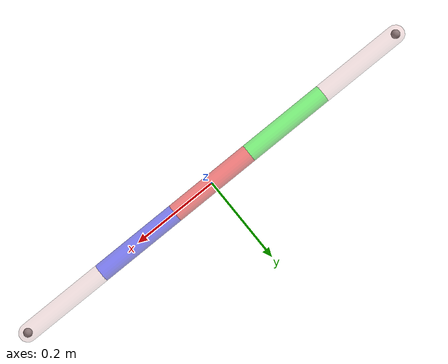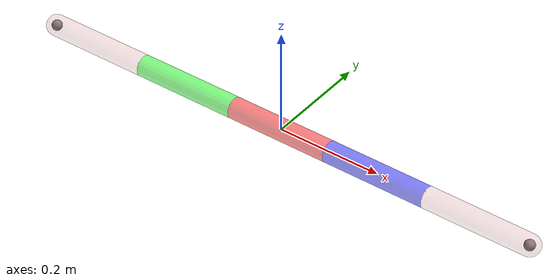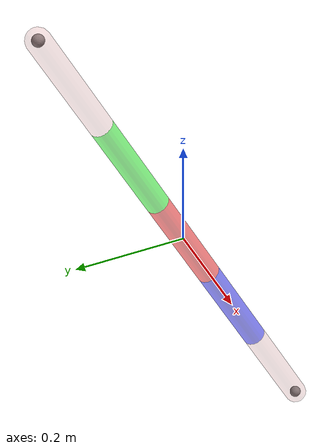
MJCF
<mujoco model="five_bar_mechanism">
    <compiler angle="degree" coordinate="local"/>
    <option timestep="0.001"/>

    <default>
        <geom type="capsule" size="0.02" rgba="0.8 0.4 0.4 0.2" contype="0" conaffinity="0"  density="50000"/>
        <joint damping="0.2" frictionloss="0.8"/>
    </default>

    <worldbody>
        <!-- Base -->
        <body name="base" pos="0 0 0">
            <geom fromto="-0.1 0 0 0.1 0 0" rgba="1 0 0 0.5"/>
            <!-- Left link 1 -->
            <body name="left_link1" pos="-0.1 0 0">
                <joint name="left_joint1" type="hinge" axis="0 0 1"/>
                <geom fromto="0 0 0 -0.2 0 0" rgba="0 1 0 0.5"/>
                <!-- Left link 2 -->
                <body name="left_link2" pos="-0.2 0 0">
                    <joint name="left_joint2" type="hinge" axis="0 0 1"/>
                    <geom fromto="0 0 0 -0.2 0 0"/>
                    <site name="left_site" pos="-0.2 0 0" size="0.01"/>
                        <!-- End-effector connected to left_link2 -->
                    <body name="ee" pos="-0.2 0 0">
                        <joint name="ee_joint" type="hinge" axis="0 0 1" limited="true" range="-120 -10"/>
                        <geom type="sphere" size="0.01" rgba="0.2 0.6 0.9 1"/>
                        <site name="ee_site" pos="0 0 0" size="0.01"/>
                    </body>
                </body>
            </body>

            <!-- Right link 1 -->
            <body name="right_link1" pos="0.1 0 0">
                <joint name="right_joint1" type="hinge" axis="0 0 1"/>
                <geom fromto="0 0 0 0.2 0 0" rgba="0 0 1 0.5"/>
                <!-- Right link 2 -->
                <body name="right_link2" pos="0.2 0 0">
                    <joint name="right_joint2" type="hinge" axis="0 0 1"/>
                    <geom fromto="0 0 0 0.2 0 0"/>
                    <site name="right_site" pos="0.2 0 0" size="0.01"/>
                </body>
            </body>
        </body>
    </worldbody>

    <!-- Tendons or equality constraints would be needed to constrain the 5-bar kinematics -->

    <actuator>
        <motor joint="left_joint1" ctrlrange="-10 10"/>
        <motor joint="right_joint1" ctrlrange="-10 10"/>
    </actuator>

    <equality>
        <weld site1="right_site" site2="ee_site"/>
    </equality>

</mujoco>
